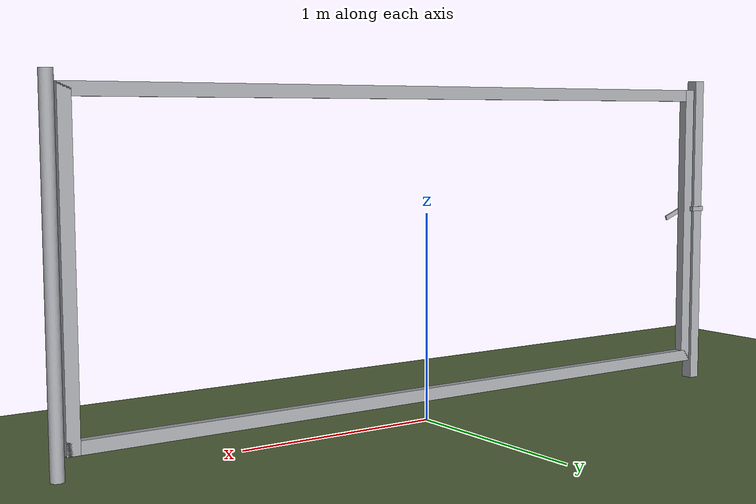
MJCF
<?xml version="1.0" ?>
<mujoco model="db0239_gate_swing_minimal">
  <compiler angle="radian" meshdir="../../hardware" texturedir="../../textures" autolimits="true" inertiafromgeom="false"/>
  <option timestep="0.002" integrator="implicitfast" cone="elliptic" impratio="10" noslip_iterations="3">
    <flag multiccd="enable"/>
  </option>
  <size memory="16M"/>
  <default>
    <geom condim="4" solref="0.005 1" solimp="0.95 0.99 0.001"/>
    <joint solreflimit="0.005 1" solimplimit="0.95 0.99 0.001"/>
    <tendon solreflimit="0.005 1"/>
    <equality solref="0.002 1"/>
  </default>
  <visual>
    <headlight ambient="0.4 0.4 0.4" diffuse="0.7 0.7 0.7" specular="0.2 0.2 0.2"/>
    <quality shadowsize="4096"/>
    <map znear="0.01" zfar="60"/>
  </visual>
  <asset>
    <material name="mat_floor" rgba="0.35 0.42 0.25 1" specular="0.2" shininess="0.15" reflectance="0"/>
    <material name="mat_wall" rgba="0.78 0.76 0.7 1" specular="0.2" shininess="0.1" reflectance="0"/>
    <material name="mat_leaf" rgba="0.65 0.66 0.68 1" specular="0.74" shininess="0.5" reflectance="0.36"/>
    <material name="mat_hinge" rgba="0.65 0.66 0.68 1" specular="0.74" shininess="0.5" reflectance="0.36"/>
    <material name="mat_op_steel_galvanized" rgba="0.65 0.66 0.68 1" specular="0.74" shininess="0.5" reflectance="0.36"/>
    <material name="mat_frame" rgba="0.65 0.66 0.68 1" specular="0.74" shininess="0.5" reflectance="0.36"/>
    <material name="mat_fence" rgba="0.7 0.45 0.32 1" specular="0.2" shininess="0.4" reflectance="0"/>
    <texture name="skybox" type="skybox" builtin="gradient" rgb1="0.6 0.7 0.85" rgb2="0.9 0.92 0.95" width="256" height="256"/>
  </asset>
  <worldbody>
    <light name="sun" pos="1.5 -2.5 4" dir="-0.3 0.5 -0.8" directional="true" diffuse="0.8 0.8 0.8" specular="0.3 0.3 0.3" castshadow="true"/>
    <light name="fill" pos="-1.5 2.5 3" dir="0.3 -0.5 -0.7" directional="true" diffuse="0.35 0.35 0.4" castshadow="false"/>
    <camera name="robot_view" pos="0 -4.01125 1.88315" xyaxes="1 0 0 0 0.26963 0.962964" fovy="52"/>
    <camera name="far_view" pos="0 4.01125 1.88315" xyaxes="-1 0 0 0 -0.26963 0.962964" fovy="52"/>
    <camera name="iso" pos="-3.04855 -3.36945 2.52495" xyaxes="0.741536 -0.670913 0 0.242917 0.268487 0.932151" fovy="46"/>
    <camera name="detail_handle" pos="-1.606 -0.8345 1.285" xyaxes="0.97561 0.219512 0 -0.070934 0.315262 0.94635" fovy="38"/>
    <geom name="floor" type="box" size="6 6 0.05" pos="0 0 -0.05" material="mat_floor" group="0" contype="1" conaffinity="1" friction="0.8 0.005 0.0001" density="2400"/>
    <geom name="post_hinge" type="cylinder" size="0.03 0.825" pos="1.836 0 0.825" material="mat_frame" group="0" contype="1" conaffinity="1" friction="0.6 0.005 0.0001" density="800"/>
    <geom name="post_latch" type="box" size="0.03 0.03 0.825" pos="-1.836 0 0.825" material="mat_frame" group="0" contype="1" conaffinity="1" friction="0.6 0.005 0.0001" density="800"/>
    <geom name="gate_stop" type="box" size="0.02 0.012 0.06" pos="-1.786 -0.0345 0.35" material="mat_frame" group="0" contype="1" conaffinity="1" friction="0.6 0.005 0.0001" density="800"/>
    <site name="approach_point" pos="0 -1.5 0" quat="1 0 0 0" size="0.05" rgba="0.2 0.9 0.2 0.5" group="4"/>
    <site name="goal_point" pos="0 1.5 0" quat="1 0 0 0" size="0.05" rgba="0.2 0.9 0.2 0.5" group="4"/>
    <site name="door_plane_center" pos="0 0 0.76" quat="1 0 0 0" size="0.02" rgba="0.2 0.9 0.2 0.5" group="4"/>
    <body name="leaf" pos="1.806 0 0">
      <inertial pos="-1.803 0 0.85" mass="72.384337" quat="0 0 -0.707107 0.707107" diaginertia="13.590864929 78.204312951 91.770748166"/>
      <joint name="leaf_hinge" type="hinge" axis="0 0 -1" pos="-0.003 0.05 0" limited="true" range="0 1.745329" damping="45.550797" frictionloss="16.233475" armature="0.02"/>
      <geom name="leaf_slab_col" type="box" size="1.8 0.0225 0.75" pos="-1.803 0 0.85" material="mat_leaf" group="3" contype="1" conaffinity="1" rgba="0.8 0.3 0.3 0.25" friction="0.42 0.005 0.0001" density="1"/>
      <geom name="leaf_rail_b" type="box" size="1.8 0.0225 0.03" pos="-1.803 0 0.13" material="mat_leaf" group="1" contype="0" conaffinity="0" density="1"/>
      <geom name="leaf_rail_t" type="box" size="1.8 0.0225 0.03" pos="-1.803 0 1.57" material="mat_leaf" group="1" contype="0" conaffinity="0" density="1"/>
      <geom name="leaf_stile_h" type="box" size="0.03 0.0225 0.75" pos="-0.033 0 0.85" material="mat_leaf" group="1" contype="0" conaffinity="0" density="1"/>
      <geom name="leaf_stile_l" type="box" size="0.03 0.0225 0.75" pos="-3.573 0 0.85" material="mat_leaf" group="1" contype="0" conaffinity="0" density="1"/>
      <site name="leaf_edge_mid" pos="-3.603 0 0.75" quat="1 0 0 0" size="0.02" rgba="0.2 0.9 0.2 0.5" group="4"/>
      <body name="leaf_fork" pos="-3.463 0 0.9">
        <inertial pos="-0.117803 -0.015389 0.042719" mass="0.176769" quat="0.977103 -0.064629 0.14262 -0.144058" diaginertia="0.000156198 0.00057331 0.00067136"/>
        <joint name="leaf_fork_hinge" type="hinge" axis="0 1 0" limited="true" range="0 1.2" damping="0.028928" frictionloss="0.004642" armature="0.0001"/>
        <geom name="leaf_fork_arm" type="box" size="0.069176 0.004 0.012" pos="-0.0645 -0.0345 0.025" quat="0.982958 0 0.183833 0" material="mat_op_steel_galvanized" group="0" contype="1" conaffinity="1" friction="0.6 0.005 0.0001" density="2500"/>
        <geom name="leaf_fork_tine_n" type="box" size="0.04 0.003 0.012" pos="-0.169 -0.039 0.05" material="mat_op_steel_galvanized" group="0" contype="1" conaffinity="1" friction="0.6 0.005 0.0001" density="2500"/>
        <geom name="leaf_fork_tine_p" type="box" size="0.04 0.003 0.012" pos="-0.169 0.039 0.05" material="mat_op_steel_galvanized" group="0" contype="1" conaffinity="1" friction="0.6 0.005 0.0001" density="2500"/>
        <geom name="leaf_fork_bridge" type="box" size="0.004 0.042 0.012" pos="-0.129 0 0.05" material="mat_op_steel_galvanized" group="0" contype="1" conaffinity="1" friction="0.6 0.005 0.0001" density="2500"/>
        <geom name="leaf_fork_handle" type="capsule" size="0.006 0.018" pos="-0.129 -0.0345 0.08" material="mat_op_steel_galvanized" group="0" contype="1" conaffinity="1" friction="0.7 0.01 0.0001" density="2500"/>
        <site name="leaf_fork_grip" pos="-0.129 -0.0345 0.105" quat="1 0 0 0" size="0.012" rgba="0.2 0.9 0.2 0.5" group="4"/>
      </body>
    </body>
  </worldbody>
  <sensor>
    <jointpos name="leaf_hinge_pos" joint="leaf_hinge"/>
    <jointvel name="leaf_hinge_vel" joint="leaf_hinge"/>
    <jointpos name="leaf_fork_hinge_pos" joint="leaf_fork_hinge"/>
    <jointvel name="leaf_fork_hinge_vel" joint="leaf_fork_hinge"/>
  </sensor>
</mujoco>
